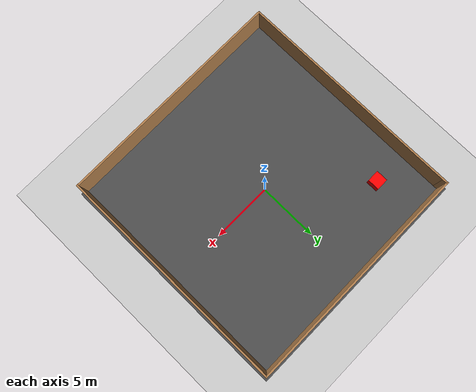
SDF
<sdf version="1.7">
 <world name="default">
  <light name="sun" type="directional">
   <pose>0 0 10 0 -0 0</pose>
   <diffuse>0.8 0.8 0.8 1</diffuse>
   <specular>0.2 0.2 0.2 1</specular>
   <attenuation>
    <range>1000</range>
    <constant>0.9</constant>
    <linear>0.01</linear>
    <quadratic>0.001</quadratic>
   </attenuation>
   <direction>-0.5 0.1 -0.9</direction>
   <spot><inner_angle>0</inner_angle><outer_angle>0</outer_angle><falloff>0</falloff></spot>
  </light>
  <model name="ground_plane">
   <static>1</static>
   <link name="link">
    <collision name="collision">
     <geometry><plane><normal>0 0 1</normal><size>100 100</size></plane></geometry>
     <surface>
      <contact><collide_bitmask>65535</collide_bitmask></contact>
      <friction><ode><mu>100</mu><mu2>50</mu2></ode></friction>
     </surface>
    </collision>
    <visual name="visual">
     <cast_shadows>0</cast_shadows>
     <geometry><plane><normal>0 0 1</normal><size>100 100</size></plane></geometry>
     <material>
      <script><uri>file://media/materials/scripts/gazebo.material</uri><name>Gazebo/Grey</name></script>
     </material>
    </visual>
   </link>
  </model>
  <gravity>0 0 -9.8</gravity>
  <magnetic_field>6e-06 2.3e-05 -4.2e-05</magnetic_field>
  <atmosphere type="adiabatic"/>
  <physics type="ode">
   <max_step_size>0.001</max_step_size>
   <real_time_factor>1</real_time_factor>
   <real_time_update_rate>1000</real_time_update_rate>
  </physics>
  <scene><ambient>0.4 0.4 0.4 1</ambient><background>0.7 0.7 0.7 1</background><shadows>1</shadows></scene>
  <spherical_coordinates>
   <surface_model>EARTH_WGS84</surface_model>
   <latitude_deg>0</latitude_deg>
   <longitude_deg>0</longitude_deg>
   <elevation>0</elevation>
   <heading_deg>0</heading_deg>
  </spherical_coordinates>
  <model name="asphalt_plane">
   <static>1</static>
   <link name="link">
    <collision name="collision"><geometry><box><size>20 20 0.1</size></box></geometry></collision>
    <visual name="visual">
     <cast_shadows>0</cast_shadows>
     <geometry><box><size>20 20 0.1</size></box></geometry>
     <material>
      <script>
       <uri>model://asphalt_plane/materials/scripts</uri>
       <uri>model://asphalt_plane/materials/textures</uri>
       <name>vrc/asphalt</name>
      </script>
     </material>
    </visual>
   </link>
   <pose>0.18289 0.069488 0.1 0 -0 0</pose>
  </model>
  <model name="Untitled">
   <pose>0.14753 -0.078619 0.05 0 -0 0</pose>
   <link name="Wall_4">
    <collision name="Wall_4_Collision">
     <geometry><box><size>19 0.15 2.5</size></box></geometry>
     <pose>0 0 1.25 0 -0 0</pose>
    </collision>
    <visual name="Wall_4_Visual">
     <pose>0 0 1.25 0 -0 0</pose>
     <geometry><box><size>19 0.15 2.5</size></box></geometry>
     <material>
      <script><uri>file://media/materials/scripts/gazebo.material</uri><name>Gazebo/Wood</name></script>
      <ambient>1 1 1 1</ambient>
     </material>
     <meta><layer>0</layer></meta>
    </visual>
    <pose>-9.55 -0.25 0 0 -0 -1.5708</pose>
   </link>
   <link name="Wall_5">
    <collision name="Wall_5_Collision">
     <geometry><box><size>19.25 0.15 2.5</size></box></geometry>
     <pose>0 0 1.25 0 -0 0</pose>
    </collision>
    <visual name="Wall_5_Visual">
     <pose>0 0 1.25 0 -0 0</pose>
     <geometry><box><size>19.25 0.15 2.5</size></box></geometry>
     <material>
      <script><uri>file://media/materials/scripts/gazebo.material</uri><name>Gazebo/Wood</name></script>
      <ambient>1 1 1 1</ambient>
     </material>
     <meta><layer>0</layer></meta>
    </visual>
    <pose>0 -9.675 0 0 -0 0</pose>
   </link>
   <link name="Wall_6">
    <collision name="Wall_6_Collision">
     <geometry><box><size>19.5 0.15 2.5</size></box></geometry>
     <pose>0 0 1.25 0 -0 0</pose>
    </collision>
    <visual name="Wall_6_Visual">
     <pose>0 0 1.25 0 -0 0</pose>
     <geometry><box><size>19.5 0.15 2.5</size></box></geometry>
     <material>
      <script><uri>file://media/materials/scripts/gazebo.material</uri><name>Gazebo/Wood</name></script>
      <ambient>1 1 1 1</ambient>
     </material>
     <meta><layer>0</layer></meta>
    </visual>
    <pose>9.55 -0 0 0 -0 1.5708</pose>
   </link>
   <link name="Wall_7">
    <collision name="Wall_7_Collision">
     <geometry><box><size>19.25 0.15 2.5</size></box></geometry>
     <pose>0 0 1.25 0 -0 0</pose>
    </collision>
    <visual name="Wall_7_Visual">
     <pose>0 0 1.25 0 -0 0</pose>
     <geometry><box><size>19.25 0.15 2.5</size></box></geometry>
     <material>
      <script><uri>file://media/materials/scripts/gazebo.material</uri><name>Gazebo/Wood</name></script>
      <ambient>1 1 1 1</ambient>
     </material>
     <meta><layer>0</layer></meta>
    </visual>
    <pose>0 9.675 0 0 -0 3.14159</pose>
   </link>
   <link name="Wall_8">
    <collision name="Wall_8_Collision">
     <geometry><box><size>1 0.15 2.5</size></box></geometry>
     <pose>0 0 1.25 0 -0 0</pose>
    </collision>
    <visual name="Wall_8_Visual">
     <pose>0 0 1.25 0 -0 0</pose>
     <geometry><box><size>1 0.15 2.5</size></box></geometry>
     <material>
      <script><uri>file://media/materials/scripts/gazebo.material</uri><name>Gazebo/Wood</name></script>
      <ambient>1 1 1 1</ambient>
     </material>
     <meta><layer>0</layer></meta>
    </visual>
    <pose>-9.55 9.25 0 0 -0 -1.5708</pose>
   </link>
   <static>1</static>
  </model>
  <model name="unit_box">
   <link name="link">
    <inertial>
     <mass>1</mass>
     <inertia>
      <ixx>0.166667</ixx>
      <ixy>0</ixy>
      <ixz>0</ixz>
      <iyy>0.166667</iyy>
      <iyz>0</iyz>
      <izz>0.166667</izz>
     </inertia>
    </inertial>
    <visual name="visual">
     <geometry><box><size>1 1 1</size></box></geometry>
     <material>
      <script><name>Gazebo/Grey</name><uri>file://media/materials/scripts/gazebo.material</uri></script>
      <shader type="pixel"><normal_map>__default__</normal_map></shader>
      <ambient>1 0 0 1</ambient>
      <diffuse>1 0 0 1</diffuse>
      <specular>1 0 0 1</specular>
      <emissive>1 0 0 1</emissive>
     </material>
    </visual>
    <collision name="collision">
     <geometry><box><size>1 1 1</size></box></geometry>
     <surface>
      <friction>
       <ode><mu>1</mu><mu2>1</mu2><fdir1>0 0 0</fdir1><slip1>0</slip1><slip2>0</slip2></ode>
       <torsional>
        <coefficient>1</coefficient>
        <patch_radius>0</patch_radius>
        <surface_radius>0</surface_radius>
        <use_patch_radius>1</use_patch_radius>
        <ode><slip>0</slip></ode>
       </torsional>
      </friction>
      <bounce><restitution_coefficient>0</restitution_coefficient><threshold>1e+06</threshold></bounce>
      <contact>
       <collide_without_contact>0</collide_without_contact>
       <collide_without_contact_bitmask>1</collide_without_contact_bitmask>
       <collide_bitmask>1</collide_bitmask>
       <ode>
        <soft_cfm>0</soft_cfm>
        <soft_erp>0.2</soft_erp>
        <kp>1e+13</kp>
        <kd>1</kd>
        <max_vel>0.01</max_vel>
        <min_depth>0</min_depth>
       </ode>
       <bullet>
        <split_impulse>1</split_impulse>
        <split_impulse_penetration_threshold>-0.01</split_impulse_penetration_threshold>
        <soft_cfm>0</soft_cfm>
        <soft_erp>0.2</soft_erp>
        <kp>1e+13</kp>
        <kd>1</kd>
       </bullet>
      </contact>
     </surface>
    </collision>
   </link>
   <static>0</static>
   <pose>-6.42287 5.80061 0.5 0 -0 0</pose>
  </model>
 </world>
</sdf>
